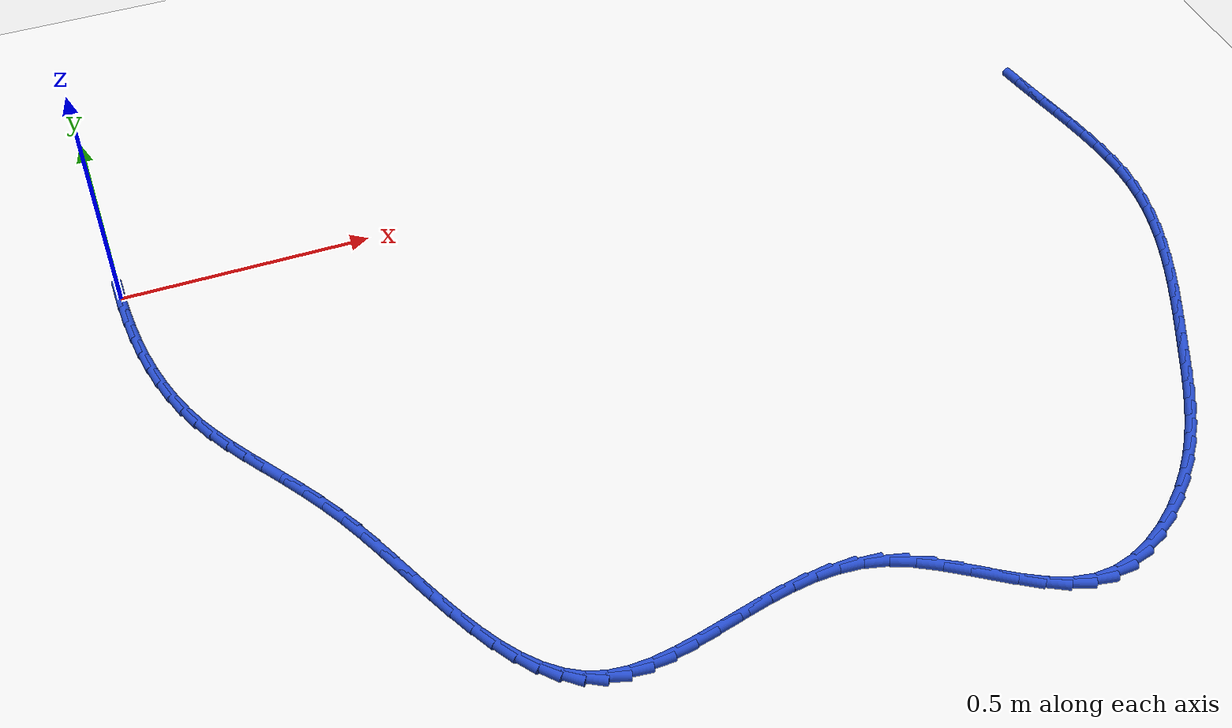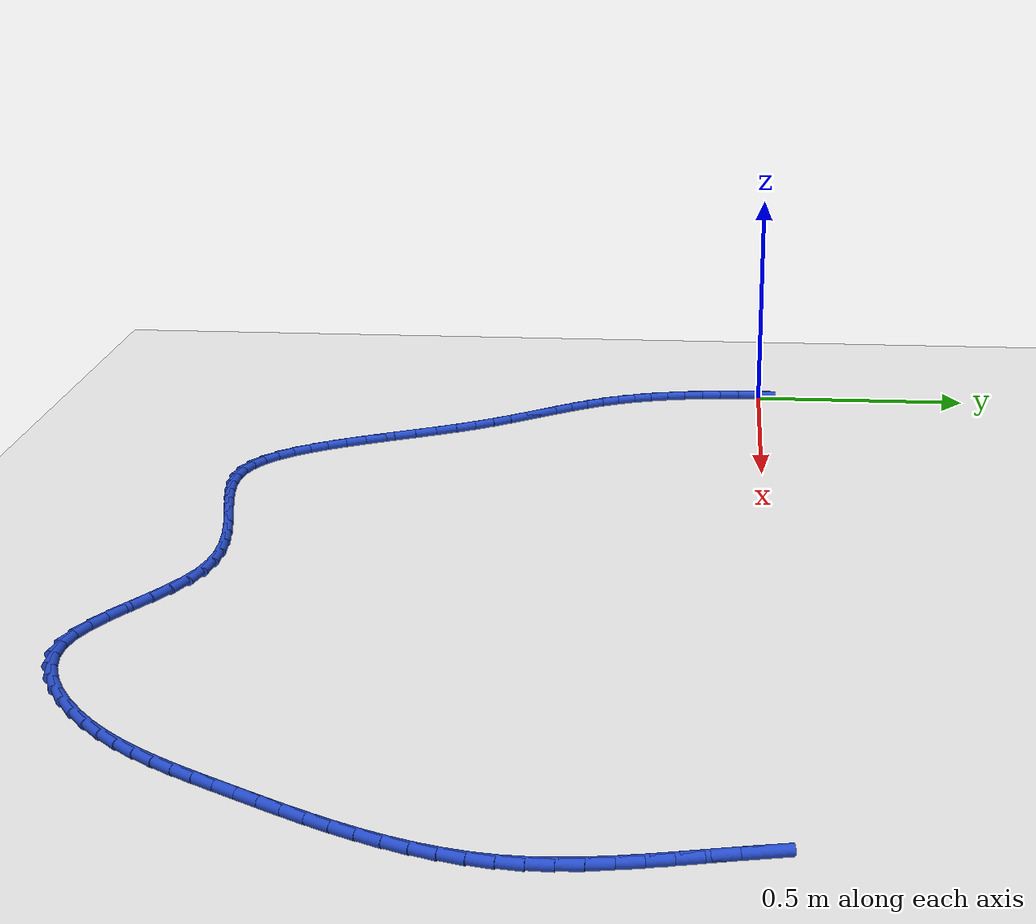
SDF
<sdf version="1.6">
 <world name="default">
  <model name="ground_plane">
   <static>1</static>
   <link name="link">
    <collision name="collision">
     <geometry><plane><normal>0 0 1</normal><size>100 100</size></plane></geometry>
     <surface><friction><ode><mu>100</mu><mu2>50</mu2></ode></friction></surface>
    </collision>
    <visual name="visual">
     <cast_shadows>0</cast_shadows>
     <geometry><plane><normal>0 0 1</normal><size>100 100</size></plane></geometry>
     <material>
      <script><uri>file://media/materials/scripts/gazebo.material</uri><name>Gazebo/WhiteGlow</name></script>
     </material>
    </visual>
   </link>
  </model>
  <model name="line">
   <link name="link_0">
    <pose>1.474514954580286e-17 -1.3877787807814457e-17 0.01 0 1.57 -1.569611502420711</pose>
    <collision name="collision">
     <geometry><cylinder><radius>0.01</radius><length>0.08</length></cylinder></geometry>
    </collision>
    <visual name="visual">
     <material>
      <script><name>Gazebo/Blue</name><uri>file://media/materials/scripts/gazebo.material</uri></script>
     </material>
     <geometry><cylinder><radius>0.01</radius><length>0.08</length></cylinder></geometry>
    </visual>
   </link>
   <link name="link_86">
    <pose>1.9812533898457014 -0.018673270940326357 0.01 0 1.57 -1.3829770902347867</pose>
    <collision name="collision">
     <geometry><cylinder><radius>0.01</radius><length>0.08</length></cylinder></geometry>
    </collision>
    <visual name="visual">
     <material>
      <script><name>Gazebo/Blue</name><uri>file://media/materials/scripts/gazebo.material</uri></script>
     </material>
     <geometry><cylinder><radius>0.01</radius><length>0.08</length></cylinder></geometry>
    </visual>
   </link>
   <link name="link_87">
    <pose>1.989502669423472 -0.062076971905665905 0.01 0 1.57 -1.371111075897321</pose>
    <collision name="collision">
     <geometry><cylinder><radius>0.01</radius><length>0.08</length></cylinder></geometry>
    </collision>
    <visual name="visual">
     <material>
      <script><name>Gazebo/Blue</name><uri>file://media/materials/scripts/gazebo.material</uri></script>
     </material>
     <geometry><cylinder><radius>0.01</radius><length>0.08</length></cylinder></geometry>
    </visual>
   </link>
   <link name="link_88">
    <pose>1.9982379883521075 -0.10523942110119433 0.01 0 1.57 -1.3703169247256088</pose>
    <collision name="collision">
     <geometry><cylinder><radius>0.01</radius><length>0.08</length></cylinder></geometry>
    </collision>
    <visual name="visual">
     <material>
      <script><name>Gazebo/Blue</name><uri>file://media/materials/scripts/gazebo.material</uri></script>
     </material>
     <geometry><cylinder><radius>0.01</radius><length>0.08</length></cylinder></geometry>
    </visual>
   </link>
   <link name="link_89">
    <pose>2.0069653127912748 -0.14818691100793302 0.01 0 1.57 -1.3807528859731506</pose>
    <collision name="collision">
     <geometry><cylinder><radius>0.01</radius><length>0.08</length></cylinder></geometry>
    </collision>
    <visual name="visual">
     <material>
      <script><name>Gazebo/Blue</name><uri>file://media/materials/scripts/gazebo.material</uri></script>
     </material>
     <geometry><cylinder><radius>0.01</radius><length>0.08</length></cylinder></geometry>
    </visual>
   </link>
   <link name="link_90">
    <pose>2.015190608900641 -0.19094573410690097 0.01 0 1.57 -1.4026836878579925</pose>
    <collision name="collision">
     <geometry><cylinder><radius>0.01</radius><length>0.08</length></cylinder></geometry>
    </collision>
    <visual name="visual">
     <material>
      <script><name>Gazebo/Blue</name><uri>file://media/materials/scripts/gazebo.material</uri></script>
     </material>
     <geometry><cylinder><radius>0.01</radius><length>0.08</length></cylinder></geometry>
    </visual>
   </link>
   <link name="link_91">
    <pose>2.0224198428398723 -0.23354218287911951 0.01 0 1.57 -1.4364459619905559</pose>
    <collision name="collision">
     <geometry><cylinder><radius>0.01</radius><length>0.08</length></cylinder></geometry>
    </collision>
    <visual name="visual">
     <material>
      <script><name>Gazebo/Blue</name><uri>file://media/materials/scripts/gazebo.material</uri></script>
     </material>
     <geometry><cylinder><radius>0.01</radius><length>0.08</length></cylinder></geometry>
    </visual>
   </link>
   <link name="link_92">
    <pose>2.028158980768636 -0.27600254980560934 0.01 0 1.57 -1.48236272086238</pose>
    <collision name="collision">
     <geometry><cylinder><radius>0.01</radius><length>0.08</length></cylinder></geometry>
    </collision>
    <visual name="visual">
     <material>
      <script><name>Gazebo/Blue</name><uri>file://media/materials/scripts/gazebo.material</uri></script>
     </material>
     <geometry><cylinder><radius>0.01</radius><length>0.08</length></cylinder></geometry>
    </visual>
   </link>
   <link name="link_93">
    <pose>2.0319139888466 -0.31835312736739096 0.01 0 1.57 -1.5405965549891274</pose>
    <collision name="collision">
     <geometry><cylinder><radius>0.01</radius><length>0.08</length></cylinder></geometry>
    </collision>
    <visual name="visual">
     <material>
      <script><name>Gazebo/Blue</name><uri>file://media/materials/scripts/gazebo.material</uri></script>
     </material>
     <geometry><cylinder><radius>0.01</radius><length>0.08</length></cylinder></geometry>
    </visual>
   </link>
   <link name="link_94">
    <pose>2.03319083323343 -0.3606202080454858 0.01 0 1.57 1.5306530634161801</pose>
    <collision name="collision">
     <geometry><cylinder><radius>0.01</radius><length>0.08</length></cylinder></geometry>
    </collision>
    <visual name="visual">
     <material>
      <script><name>Gazebo/Blue</name><uri>file://media/materials/scripts/gazebo.material</uri></script>
     </material>
     <geometry><cylinder><radius>0.01</radius><length>0.08</length></cylinder></geometry>
    </visual>
   </link>
   <link name="link_95">
    <pose>2.031495480279 -0.40283008430540035 0.01 0 1.57 1.452391381305673</pose>
    <collision name="collision">
     <geometry><cylinder><radius>0.01</radius><length>0.08</length></cylinder></geometry>
    </collision>
    <visual name="visual">
     <material>
      <script><name>Gazebo/Blue</name><uri>file://media/materials/scripts/gazebo.material</uri></script>
     </material>
     <geometry><cylinder><radius>0.01</radius><length>0.08</length></cylinder></geometry>
    </visual>
   </link>
   <link name="link_96">
    <pose>2.0264792215204626 -0.44499719648742975 0.01 0 1.57 1.38014955476972</pose>
    <collision name="collision">
     <geometry><cylinder><radius>0.01</radius><length>0.08</length></cylinder></geometry>
    </collision>
    <visual name="visual">
     <material>
      <script><name>Gazebo/Blue</name><uri>file://media/materials/scripts/gazebo.material</uri></script>
     </material>
     <geometry><cylinder><radius>0.01</radius><length>0.08</length></cylinder></geometry>
    </visual>
   </link>
   <link name="link_97">
    <pose>2.018355681669334 -0.48709012334848456 0.01 0 1.57 1.3171562721857506</pose>
    <collision name="collision">
     <geometry><cylinder><radius>0.01</radius><length>0.08</length></cylinder></geometry>
    </collision>
    <visual name="visual">
     <material>
      <script><name>Gazebo/Blue</name><uri>file://media/materials/scripts/gazebo.material</uri></script>
     </material>
     <geometry><cylinder><radius>0.01</radius><length>0.08</length></cylinder></geometry>
    </visual>
   </link>
   <link name="link_98">
    <pose>2.007474480576374 -0.5290663524406464 0.01 0 1.57 1.2630947775340389</pose>
    <collision name="collision">
     <geometry><cylinder><radius>0.01</radius><length>0.08</length></cylinder></geometry>
    </collision>
    <visual name="visual">
     <material>
      <script><name>Gazebo/Blue</name><uri>file://media/materials/scripts/gazebo.material</uri></script>
     </material>
     <geometry><cylinder><radius>0.01</radius><length>0.08</length></cylinder></geometry>
    </visual>
   </link>
   <link name="link_99">
    <pose>1.994185238092344 -0.5708833713159981 0.01 0 1.57 1.217473531766666</pose>
    <collision name="collision">
     <geometry><cylinder><radius>0.01</radius><length>0.08</length></cylinder></geometry>
    </collision>
    <visual name="visual">
     <material>
      <script><name>Gazebo/Blue</name><uri>file://media/materials/scripts/gazebo.material</uri></script>
     </material>
     <geometry><cylinder><radius>0.01</radius><length>0.08</length></cylinder></geometry>
    </visual>
   </link>
   <link name="link_100">
    <pose>1.9788375740680055 -0.6124986675266201 0.01 0 1.57 1.1797486753746418</pose>
    <collision name="collision">
     <geometry><cylinder><radius>0.01</radius><length>0.08</length></cylinder></geometry>
    </collision>
    <visual name="visual">
     <material>
      <script><name>Gazebo/Blue</name><uri>file://media/materials/scripts/gazebo.material</uri></script>
     </material>
     <geometry><cylinder><radius>0.01</radius><length>0.08</length></cylinder></geometry>
    </visual>
   </link>
   <link name="link_101">
    <pose>1.96178110835412 -0.6538697286245951 0.01 0 1.57 1.14940668065971</pose>
    <collision name="collision">
     <geometry><cylinder><radius>0.01</radius><length>0.08</length></cylinder></geometry>
    </collision>
    <visual name="visual">
     <material>
      <script><name>Gazebo/Blue</name><uri>file://media/materials/scripts/gazebo.material</uri></script>
     </material>
     <geometry><cylinder><radius>0.01</radius><length>0.08</length></cylinder></geometry>
    </visual>
   </link>
   <link name="link_102">
    <pose>1.9433654608014488 -0.6949540421620055 0.01 0 1.57 1.1260163302226252</pose>
    <collision name="collision">
     <geometry><cylinder><radius>0.01</radius><length>0.08</length></cylinder></geometry>
    </collision>
    <visual name="visual">
     <material>
      <script><name>Gazebo/Blue</name><uri>file://media/materials/scripts/gazebo.material</uri></script>
     </material>
     <geometry><cylinder><radius>0.01</radius><length>0.08</length></cylinder></geometry>
    </visual>
   </link>
   <link name="link_103">
    <pose>1.9239402512607533 -0.7357090956909332 0.01 0 1.57 1.1092605054071307</pose>
    <collision name="collision">
     <geometry><cylinder><radius>0.01</radius><length>0.08</length></cylinder></geometry>
    </collision>
    <visual name="visual">
     <material>
      <script><name>Gazebo/Blue</name><uri>file://media/materials/scripts/gazebo.material</uri></script>
     </material>
     <geometry><cylinder><radius>0.01</radius><length>0.08</length></cylinder></geometry>
    </visual>
   </link>
   <link name="link_104">
    <pose>1.9038550995827932 -0.7760923767634607 0.01 0 1.57 1.0989567016691184</pose>
    <collision name="collision">
     <geometry><cylinder><radius>0.01</radius><length>0.08</length></cylinder></geometry>
    </collision>
    <visual name="visual">
     <material>
      <script><name>Gazebo/Blue</name><uri>file://media/materials/scripts/gazebo.material</uri></script>
     </material>
     <geometry><cylinder><radius>0.01</radius><length>0.08</length></cylinder></geometry>
    </visual>
   </link>
   <link name="link_105">
    <pose>1.8834596256183316 -0.8160613729316685 0.01 0 1.57 1.095042881453827</pose>
    <collision name="collision">
     <geometry><cylinder><radius>0.01</radius><length>0.08</length></cylinder></geometry>
    </collision>
    <visual name="visual">
     <material>
      <script><name>Gazebo/Blue</name><uri>file://media/materials/scripts/gazebo.material</uri></script>
     </material>
     <geometry><cylinder><radius>0.01</radius><length>0.08</length></cylinder></geometry>
    </visual>
   </link>
   <link name="link_106">
    <pose>1.8631019770100081 -0.8555735100790164 0.01 0 1.57 1.0924021762531306</pose>
    <collision name="collision">
     <geometry><cylinder><radius>0.01</radius><length>0.08</length></cylinder></geometry>
    </collision>
    <visual name="visual">
     <material>
      <script><name>Gazebo/Blue</name><uri>file://media/materials/scripts/gazebo.material</uri></script>
     </material>
     <geometry><cylinder><radius>0.01</radius><length>0.08</length></cylinder></geometry>
    </visual>
   </link>
   <link name="link_107">
    <pose>1.8428766129772087 -0.89457558745567 0.01 0 1.57 1.0798327241311692</pose>
    <collision name="collision">
     <geometry><cylinder><radius>0.01</radius><length>0.08</length></cylinder></geometry>
    </collision>
    <visual name="visual">
     <material>
      <script><name>Gazebo/Blue</name><uri>file://media/materials/scripts/gazebo.material</uri></script>
     </material>
     <geometry><cylinder><radius>0.01</radius><length>0.08</length></cylinder></geometry>
    </visual>
   </link>
   <link name="link_108">
    <pose>1.8223382880846004 -0.9329917968810799 0.01 0 1.57 1.0557878216519025</pose>
    <collision name="collision">
     <geometry><cylinder><radius>0.01</radius><length>0.08</length></cylinder></geometry>
    </collision>
    <visual name="visual">
     <material>
      <script><name>Gazebo/Blue</name><uri>file://media/materials/scripts/gazebo.material</uri></script>
     </material>
     <geometry><cylinder><radius>0.01</radius><length>0.08</length></cylinder></geometry>
    </visual>
   </link>
   <link name="link_109">
    <pose>1.8009726419413181 -0.9707434350513084 0.01 0 1.57 1.020456507399652</pose>
    <collision name="collision">
     <geometry><cylinder><radius>0.01</radius><length>0.08</length></cylinder></geometry>
    </collision>
    <visual name="visual">
     <material>
      <script><name>Gazebo/Blue</name><uri>file://media/materials/scripts/gazebo.material</uri></script>
     </material>
     <geometry><cylinder><radius>0.01</radius><length>0.08</length></cylinder></geometry>
    </visual>
   </link>
   <link name="link_110">
    <pose>1.778265314156497 -1.0077517986624183 0.01 0 1.57 0.9744397275117765</pose>
    <collision name="collision">
     <geometry><cylinder><radius>0.01</radius><length>0.08</length></cylinder></geometry>
    </collision>
    <visual name="visual">
     <material>
      <script><name>Gazebo/Blue</name><uri>file://media/materials/scripts/gazebo.material</uri></script>
     </material>
     <geometry><cylinder><radius>0.01</radius><length>0.08</length></cylinder></geometry>
    </visual>
   </link>
   <link name="link_111">
    <pose>1.753701944339274 -1.043938184410471 0.01 0 1.57 0.9188339428187988</pose>
    <collision name="collision">
     <geometry><cylinder><radius>0.01</radius><length>0.08</length></cylinder></geometry>
    </collision>
    <visual name="visual">
     <material>
      <script><name>Gazebo/Blue</name><uri>file://media/materials/scripts/gazebo.material</uri></script>
     </material>
     <geometry><cylinder><radius>0.01</radius><length>0.08</length></cylinder></geometry>
    </visual>
   </link>
   <link name="link_112">
    <pose>1.7267681720987842 -1.079223888991529 0.01 0 1.57 0.8552693478247163</pose>
    <collision name="collision">
     <geometry><cylinder><radius>0.01</radius><length>0.08</length></cylinder></geometry>
    </collision>
    <visual name="visual">
     <material>
      <script><name>Gazebo/Blue</name><uri>file://media/materials/scripts/gazebo.material</uri></script>
     </material>
     <geometry><cylinder><radius>0.01</radius><length>0.08</length></cylinder></geometry>
    </visual>
   </link>
   <link name="link_113">
    <pose>1.6969496370441626 -1.1135302091016552 0.01 0 1.57 0.7858690814331872</pose>
    <collision name="collision">
     <geometry><cylinder><radius>0.01</radius><length>0.08</length></cylinder></geometry>
    </collision>
    <visual name="visual">
     <material>
      <script><name>Gazebo/Blue</name><uri>file://media/materials/scripts/gazebo.material</uri></script>
     </material>
     <geometry><cylinder><radius>0.01</radius><length>0.08</length></cylinder></geometry>
    </visual>
   </link>
   <link name="link_114">
    <pose>1.6638016323614995 -1.1467094484821174 0.01 0 1.57 0.7111743222547966</pose>
    <collision name="collision">
     <geometry><cylinder><radius>0.01</radius><length>0.08</length></cylinder></geometry>
    </collision>
    <visual name="visual">
     <material>
      <script><name>Gazebo/Blue</name><uri>file://media/materials/scripts/gazebo.material</uri></script>
     </material>
     <geometry><cylinder><radius>0.01</radius><length>0.08</length></cylinder></geometry>
    </visual>
   </link>
   <link name="link_115">
    <pose>1.6276031955970993 -1.1778970307926642 0.01 0 1.57 0.6267005551634358</pose>
    <collision name="collision">
     <geometry><cylinder><radius>0.01</radius><length>0.08</length></cylinder></geometry>
    </collision>
    <visual name="visual">
     <material>
      <script><name>Gazebo/Blue</name><uri>file://media/materials/scripts/gazebo.material</uri></script>
     </material>
     <geometry><cylinder><radius>0.01</radius><length>0.08</length></cylinder></geometry>
    </visual>
   </link>
   <link name="link_116">
    <pose>1.5890624680826184 -1.205803345698255 0.01 0 1.57 0.5261740592751756</pose>
    <collision name="collision">
     <geometry><cylinder><radius>0.01</radius><length>0.08</length></cylinder></geometry>
    </collision>
    <visual name="visual">
     <material>
      <script><name>Gazebo/Blue</name><uri>file://media/materials/scripts/gazebo.material</uri></script>
     </material>
     <geometry><cylinder><radius>0.01</radius><length>0.08</length></cylinder></geometry>
    </visual>
   </link>
   <link name="link_117">
    <pose>1.5488932205015051 -1.2291332069030654 0.01 0 1.57 0.4018195688726825</pose>
    <collision name="collision">
     <geometry><cylinder><radius>0.01</radius><length>0.08</length></cylinder></geometry>
    </collision>
    <visual name="visual">
     <material>
      <script><name>Gazebo/Blue</name><uri>file://media/materials/scripts/gazebo.material</uri></script>
     </material>
     <geometry><cylinder><radius>0.01</radius><length>0.08</length></cylinder></geometry>
    </visual>
   </link>
   <link name="link_118">
    <pose>1.507809223537208 -1.2465914281112687 0.01 0 1.57 0.24429807771158354</pose>
    <collision name="collision">
     <geometry><cylinder><radius>0.01</radius><length>0.08</length></cylinder></geometry>
    </collision>
    <visual name="visual">
     <material>
      <script><name>Gazebo/Blue</name><uri>file://media/materials/scripts/gazebo.material</uri></script>
     </material>
     <geometry><cylinder><radius>0.01</radius><length>0.08</length></cylinder></geometry>
    </visual>
   </link>
   <link name="link_119">
    <pose>1.4665242478731764 -1.2568828230270401 0.01 0 1.57 0.044838319226731455</pose>
    <collision name="collision">
     <geometry><cylinder><radius>0.01</radius><length>0.08</length></cylinder></geometry>
    </collision>
    <visual name="visual">
     <material>
      <script><name>Gazebo/Blue</name><uri>file://media/materials/scripts/gazebo.material</uri></script>
     </material>
     <geometry><cylinder><radius>0.01</radius><length>0.08</length></cylinder></geometry>
    </visual>
   </link>
   <link name="link_120">
    <pose>1.4257520641928587 -1.2587122053545532 0.01 0 1.57 -0.18429249679173657</pose>
    <collision name="collision">
     <geometry><cylinder><radius>0.01</radius><length>0.08</length></cylinder></geometry>
    </collision>
    <visual name="visual">
     <material>
      <script><name>Gazebo/Blue</name><uri>file://media/materials/scripts/gazebo.material</uri></script>
     </material>
     <geometry><cylinder><radius>0.01</radius><length>0.08</length></cylinder></geometry>
    </visual>
   </link>
   <link name="link_121">
    <pose>1.3860391979605995 -1.2513094230159543 0.01 0 1.57 -0.3718226003157142</pose>
    <collision name="collision">
     <geometry><cylinder><radius>0.01</radius><length>0.08</length></cylinder></geometry>
    </collision>
    <visual name="visual">
     <material>
      <script><name>Gazebo/Blue</name><uri>file://media/materials/scripts/gazebo.material</uri></script>
     </material>
     <geometry><cylinder><radius>0.01</radius><length>0.08</length></cylinder></geometry>
    </visual>
   </link>
   <link name="link_122">
    <pose>1.3472111104761737 -1.2361679662771308 0.01 0 1.57 -0.49691332846639535</pose>
    <collision name="collision">
     <geometry><cylinder><radius>0.01</radius><length>0.08</length></cylinder></geometry>
    </collision>
    <visual name="visual">
     <material>
      <script><name>Gazebo/Blue</name><uri>file://media/materials/scripts/gazebo.material</uri></script>
     </material>
     <geometry><cylinder><radius>0.01</radius><length>0.08</length></cylinder></geometry>
    </visual>
   </link>
   <link name="link_123">
    <pose>1.3088989781881624 -1.2153912453493987 0.01 0 1.57 -0.5671346628533963</pose>
    <collision name="collision">
     <geometry><cylinder><radius>0.01</radius><length>0.08</length></cylinder></geometry>
    </collision>
    <visual name="visual">
     <material>
      <script><name>Gazebo/Blue</name><uri>file://media/materials/scripts/gazebo.material</uri></script>
     </material>
     <geometry><cylinder><radius>0.01</radius><length>0.08</length></cylinder></geometry>
    </visual>
   </link>
   <link name="link_124">
    <pose>1.2707339747320268 -1.1910826792753282 0.01 0 1.57 -0.5906285581596572</pose>
    <collision name="collision">
     <geometry><cylinder><radius>0.01</radius><length>0.08</length></cylinder></geometry>
    </collision>
    <visual name="visual">
     <material>
      <script><name>Gazebo/Blue</name><uri>file://media/materials/scripts/gazebo.material</uri></script>
     </material>
     <geometry><cylinder><radius>0.01</radius><length>0.08</length></cylinder></geometry>
    </visual>
   </link>
   <link name="link_125">
    <pose>1.2323472737432268 -1.165345687097488 0.01 0 1.57 -0.5714320878071687</pose>
    <collision name="collision">
     <geometry><cylinder><radius>0.01</radius><length>0.08</length></cylinder></geometry>
    </collision>
    <visual name="visual">
     <material>
      <script><name>Gazebo/Blue</name><uri>file://media/materials/scripts/gazebo.material</uri></script>
     </material>
     <geometry><cylinder><radius>0.01</radius><length>0.08</length></cylinder></geometry>
    </visual>
   </link>
   <link name="link_126">
    <pose>1.1933700488572228 -1.1402836878584486 0.01 0 1.57 -0.5089449818770928</pose>
    <collision name="collision">
     <geometry><cylinder><radius>0.01</radius><length>0.08</length></cylinder></geometry>
    </collision>
    <visual name="visual">
     <material>
      <script><name>Gazebo/Blue</name><uri>file://media/materials/scripts/gazebo.material</uri></script>
     </material>
     <geometry><cylinder><radius>0.01</radius><length>0.08</length></cylinder></geometry>
    </visual>
   </link>
   <link name="link_127">
    <pose>1.153433473709477 -1.1180001006007798 0.01 0 1.57 -0.3990806448086749</pose>
    <collision name="collision">
     <geometry><cylinder><radius>0.01</radius><length>0.08</length></cylinder></geometry>
    </collision>
    <visual name="visual">
     <material>
      <script><name>Gazebo/Blue</name><uri>file://media/materials/scripts/gazebo.material</uri></script>
     </material>
     <geometry><cylinder><radius>0.01</radius><length>0.08</length></cylinder></geometry>
    </visual>
   </link>
   <link name="link_128">
    <pose>1.1121687219354486 -1.100598344367051 0.01 0 1.57 -0.24147034079971738</pose>
    <collision name="collision">
     <geometry><cylinder><radius>0.01</radius><length>0.08</length></cylinder></geometry>
    </collision>
    <visual name="visual">
     <material>
      <script><name>Gazebo/Blue</name><uri>file://media/materials/scripts/gazebo.material</uri></script>
     </material>
     <geometry><cylinder><radius>0.01</radius><length>0.08</length></cylinder></geometry>
    </visual>
   </link>
   <link name="link_129">
    <pose>1.0692430069509504 -1.090026785630014 0.01 0 1.57 -0.08299883632488969</pose>
    <collision name="collision">
     <geometry><cylinder><radius>0.01</radius><length>0.08</length></cylinder></geometry>
    </collision>
    <visual name="visual">
     <material>
      <script><name>Gazebo/Blue</name><uri>file://media/materials/scripts/gazebo.material</uri></script>
     </material>
     <geometry><cylinder><radius>0.01</radius><length>0.08</length></cylinder></geometry>
    </visual>
   </link>
   <link name="link_130">
    <pose>1.024766792583656 -1.0863268115533833 0.01 0 1.57 0.042308220571196924</pose>
    <collision name="collision">
     <geometry><cylinder><radius>0.01</radius><length>0.08</length></cylinder></geometry>
    </collision>
    <visual name="visual">
     <material>
      <script><name>Gazebo/Blue</name><uri>file://media/materials/scripts/gazebo.material</uri></script>
     </material>
     <geometry><cylinder><radius>0.01</radius><length>0.08</length></cylinder></geometry>
    </visual>
   </link>
   <link name="link_131">
    <pose>0.9791484826500381 -1.0882579934722278 0.01 0 1.57 0.13506451541870484</pose>
    <collision name="collision">
     <geometry><cylinder><radius>0.01</radius><length>0.08</length></cylinder></geometry>
    </collision>
    <visual name="visual">
     <material>
      <script><name>Gazebo/Blue</name><uri>file://media/materials/scripts/gazebo.material</uri></script>
     </material>
     <geometry><cylinder><radius>0.01</radius><length>0.08</length></cylinder></geometry>
    </visual>
   </link>
   <link name="link_132">
    <pose>0.9328020133094579 -1.0945561011342355 0.01 0 1.57 0.19881013303651937</pose>
    <collision name="collision">
     <geometry><cylinder><radius>0.01</radius><length>0.08</length></cylinder></geometry>
    </collision>
    <visual name="visual">
     <material>
      <script><name>Gazebo/Blue</name><uri>file://media/materials/scripts/gazebo.material</uri></script>
     </material>
     <geometry><cylinder><radius>0.01</radius><length>0.08</length></cylinder></geometry>
    </visual>
   </link>
   <link name="link_133">
    <pose>0.8861413207212718 -1.1039569042870923 0.01 0 1.57 0.2368571067052578</pose>
    <collision name="collision">
     <geometry><cylinder><radius>0.01</radius><length>0.08</length></cylinder></geometry>
    </collision>
    <visual name="visual">
     <material>
      <script><name>Gazebo/Blue</name><uri>file://media/materials/scripts/gazebo.material</uri></script>
     </material>
     <geometry><cylinder><radius>0.01</radius><length>0.08</length></cylinder></geometry>
    </visual>
   </link>
   <link name="link_134">
    <pose>0.8395803410448391 -1.1151961726784854 0.01 0 1.57 0.2511350420227273</pose>
    <collision name="collision">
     <geometry><cylinder><radius>0.01</radius><length>0.08</length></cylinder></geometry>
    </collision>
    <visual name="visual">
     <material>
      <script><name>Gazebo/Blue</name><uri>file://media/materials/scripts/gazebo.material</uri></script>
     </material>
     <geometry><cylinder><radius>0.01</radius><length>0.08</length></cylinder></geometry>
    </visual>
   </link>
   <link name="link_135">
    <pose>0.7935330104395176 -1.1270096760561024 0.01 0 1.57 0.24171299207173114</pose>
    <collision name="collision">
     <geometry><cylinder><radius>0.01</radius><length>0.08</length></cylinder></geometry>
    </collision>
    <visual name="visual">
     <material>
      <script><name>Gazebo/Blue</name><uri>file://media/materials/scripts/gazebo.material</uri></script>
     </material>
     <geometry><cylinder><radius>0.01</radius><length>0.08</length></cylinder></geometry>
    </visual>
   </link>
   <link name="link_136">
    <pose>0.7484132650646654 -1.1381331841676297 0.01 0 1.57 0.20646391307965176</pose>
    <collision name="collision">
     <geometry><cylinder><radius>0.01</radius><length>0.08</length></cylinder></geometry>
    </collision>
    <visual name="visual">
     <material>
      <script><name>Gazebo/Blue</name><uri>file://media/materials/scripts/gazebo.material</uri></script>
     </material>
     <geometry><cylinder><radius>0.01</radius><length>0.08</length></cylinder></geometry>
    </visual>
   </link>
   <link name="link_137">
    <pose>0.7046350410796421 -1.1473024667607539 0.01 0 1.57 0.14067424209728863</pose>
    <collision name="collision">
     <geometry><cylinder><radius>0.01</radius><length>0.08</length></cylinder></geometry>
    </collision>
    <visual name="visual">
     <material>
      <script><name>Gazebo/Blue</name><uri>file://media/materials/scripts/gazebo.material</uri></script>
     </material>
     <geometry><cylinder><radius>0.01</radius><length>0.08</length></cylinder></geometry>
    </visual>
   </link>
   <link name="link_138">
    <pose>0.6626122746438058 -1.1532532935831628 0.01 0 1.57 0.036821907691252403</pose>
    <collision name="collision">
     <geometry><cylinder><radius>0.01</radius><length>0.08</length></cylinder></geometry>
    </collision>
    <visual name="visual">
     <material>
      <script><name>Gazebo/Blue</name><uri>file://media/materials/scripts/gazebo.material</uri></script>
     </material>
     <geometry><cylinder><radius>0.01</radius><length>0.08</length></cylinder></geometry>
    </visual>
   </link>
   <link name="link_139">
    <pose>0.6227589019165144 -1.154721434382543 0.01 0 1.57 -0.11430425538067733</pose>
    <collision name="collision">
     <geometry><cylinder><radius>0.01</radius><length>0.08</length></cylinder></geometry>
    </collision>
    <visual name="visual">
     <material>
      <script><name>Gazebo/Blue</name><uri>file://media/materials/scripts/gazebo.material</uri></script>
     </material>
     <geometry><cylinder><radius>0.01</radius><length>0.08</length></cylinder></geometry>
    </visual>
   </link>
   <link name="link_140">
    <pose>0.5854888590571266 -1.150442658906581 0.01 0 1.57 -0.3152104968645519</pose>
    <collision name="collision">
     <geometry><cylinder><radius>0.01</radius><length>0.08</length></cylinder></geometry>
    </collision>
    <visual name="visual">
     <material>
      <script><name>Gazebo/Blue</name><uri>file://media/materials/scripts/gazebo.material</uri></script>
     </material>
     <geometry><cylinder><radius>0.01</radius><length>0.08</length></cylinder></geometry>
    </visual>
   </link>
   <link name="link_141">
    <pose>0.5511780165753297 -1.1392545002440027 0.01 0 1.57 -0.5225237773317238</pose>
    <collision name="collision">
     <geometry><cylinder><radius>0.01</radius><length>0.08</length></cylinder></geometry>
    </collision>
    <visual name="visual">
     <material>
      <script><name>Gazebo/Blue</name><uri>file://media/materials/scripts/gazebo.material</uri></script>
     </material>
     <geometry><cylinder><radius>0.01</radius><length>0.08</length></cylinder></geometry>
    </visual>
   </link>
   <link name="link_142">
    <pose>0.5197650684786355 -1.1211632234471094 0.01 0 1.57 -0.6986979543789874</pose>
    <collision name="collision">
     <geometry><cylinder><radius>0.01</radius><length>0.08</length></cylinder></geometry>
    </collision>
    <visual name="visual">
     <material>
      <script><name>Gazebo/Blue</name><uri>file://media/materials/scripts/gazebo.material</uri></script>
     </material>
     <geometry><cylinder><radius>0.01</radius><length>0.08</length></cylinder></geometry>
    </visual>
   </link>
   <link name="link_143">
    <pose>0.49090917297113484 -1.0969223945480113 0.01 0 1.57 -0.8383162820028172</pose>
    <collision name="collision">
     <geometry><cylinder><radius>0.01</radius><length>0.08</length></cylinder></geometry>
    </collision>
    <visual name="visual">
     <material>
      <script><name>Gazebo/Blue</name><uri>file://media/materials/scripts/gazebo.material</uri></script>
     </material>
     <geometry><cylinder><radius>0.01</radius><length>0.08</length></cylinder></geometry>
    </visual>
   </link>
   <link name="link_144">
    <pose>0.4642649409639561 -1.0672977361485438 0.01 0 1.57 -0.9444084599551408</pose>
    <collision name="collision">
     <geometry><cylinder><radius>0.01</radius><length>0.08</length></cylinder></geometry>
    </collision>
    <visual name="visual">
     <material>
      <script><name>Gazebo/Blue</name><uri>file://media/materials/scripts/gazebo.material</uri></script>
     </material>
     <geometry><cylinder><radius>0.01</radius><length>0.08</length></cylinder></geometry>
    </visual>
   </link>
   <link name="link_145">
    <pose>0.43948698336822783 -1.0330549708505417 0.01 0 1.57 -1.022692305719655</pose>
    <collision name="collision">
     <geometry><cylinder><radius>0.01</radius><length>0.08</length></cylinder></geometry>
    </collision>
    <visual name="visual">
     <material>
      <script><name>Gazebo/Blue</name><uri>file://media/materials/scripts/gazebo.material</uri></script>
     </material>
     <geometry><cylinder><radius>0.01</radius><length>0.08</length></cylinder></geometry>
    </visual>
   </link>
   <link name="link_146">
    <pose>0.4162299110950787 -0.9949598212558401 0.01 0 1.57 -1.078611920497188</pose>
    <collision name="collision">
     <geometry><cylinder><radius>0.01</radius><length>0.08</length></cylinder></geometry>
    </collision>
    <visual name="visual">
     <material>
      <script><name>Gazebo/Blue</name><uri>file://media/materials/scripts/gazebo.material</uri></script>
     </material>
     <geometry><cylinder><radius>0.01</radius><length>0.08</length></cylinder></geometry>
    </visual>
   </link>
   <link name="link_147">
    <pose>0.39414833505563723 -0.9537780099662743 0.01 0 1.57 -1.1163840046446143</pose>
    <collision name="collision">
     <geometry><cylinder><radius>0.01</radius><length>0.08</length></cylinder></geometry>
    </collision>
    <visual name="visual">
     <material>
      <script><name>Gazebo/Blue</name><uri>file://media/materials/scripts/gazebo.material</uri></script>
     </material>
     <geometry><cylinder><radius>0.01</radius><length>0.08</length></cylinder></geometry>
    </visual>
   </link>
   <link name="link_148">
    <pose>0.3728968661610328 -0.9102752595836807 0.01 0 1.57 -1.138923552455231</pose>
    <collision name="collision">
     <geometry><cylinder><radius>0.01</radius><length>0.08</length></cylinder></geometry>
    </collision>
    <visual name="visual">
     <material>
      <script><name>Gazebo/Blue</name><uri>file://media/materials/scripts/gazebo.material</uri></script>
     </material>
     <geometry><cylinder><radius>0.01</radius><length>0.08</length></cylinder></geometry>
    </visual>
   </link>
   <link name="link_149">
    <pose>0.35213011532239386 -0.8652172927098941 0.01 0 1.57 -1.1480137862251198</pose>
    <collision name="collision">
     <geometry><cylinder><radius>0.01</radius><length>0.08</length></cylinder></geometry>
    </collision>
    <visual name="visual">
     <material>
      <script><name>Gazebo/Blue</name><uri>file://media/materials/scripts/gazebo.material</uri></script>
     </material>
     <geometry><cylinder><radius>0.01</radius><length>0.08</length></cylinder></geometry>
    </visual>
   </link>
   <link name="link_150">
    <pose>0.3315026934508491 -0.8193698319467502 0.01 0 1.57 -1.1444774300110125</pose>
    <collision name="collision">
     <geometry><cylinder><radius>0.01</radius><length>0.08</length></cylinder></geometry>
    </collision>
    <visual name="visual">
     <material>
      <script><name>Gazebo/Blue</name><uri>file://media/materials/scripts/gazebo.material</uri></script>
     </material>
     <geometry><cylinder><radius>0.01</radius><length>0.08</length></cylinder></geometry>
    </visual>
   </link>
   <link name="link_151">
    <pose>0.31066921145752713 -0.7734985998960836 0.01 0 1.57 -1.128279077544727</pose>
    <collision name="collision">
     <geometry><cylinder><radius>0.01</radius><length>0.08</length></cylinder></geometry>
    </collision>
    <visual name="visual">
     <material>
      <script><name>Gazebo/Blue</name><uri>file://media/materials/scripts/gazebo.material</uri></script>
     </material>
     <geometry><cylinder><radius>0.01</radius><length>0.08</length></cylinder></geometry>
    </visual>
   </link>
   <link name="link_152">
    <pose>0.28928428025355685 -0.7283693191597305 0.01 0 1.57 -1.0985487715704498</pose>
    <collision name="collision">
     <geometry><cylinder><radius>0.01</radius><length>0.08</length></cylinder></geometry>
    </collision>
    <visual name="visual">
     <material>
      <script><name>Gazebo/Blue</name><uri>file://media/materials/scripts/gazebo.material</uri></script>
     </material>
     <geometry><cylinder><radius>0.01</radius><length>0.08</length></cylinder></geometry>
    </visual>
   </link>
   <link name="link_153">
    <pose>0.26700251075006654 -0.6847477123395248 0.01 0 1.57 -1.05543117837572</pose>
    <collision name="collision">
     <geometry><cylinder><radius>0.01</radius><length>0.08</length></cylinder></geometry>
    </collision>
    <visual name="visual">
     <material>
      <script><name>Gazebo/Blue</name><uri>file://media/materials/scripts/gazebo.material</uri></script>
     </material>
     <geometry><cylinder><radius>0.01</radius><length>0.08</length></cylinder></geometry>
    </visual>
   </link>
   <link name="link_154">
    <pose>0.24353419954013789 -0.6433152875915255 0.01 0 1.57 -1.0146787579578334</pose>
    <collision name="collision">
     <geometry><cylinder><radius>0.01</radius><length>0.08</length></cylinder></geometry>
    </collision>
    <visual name="visual">
     <material>
      <script><name>Gazebo/Blue</name><uri>file://media/materials/scripts/gazebo.material</uri></script>
     </material>
     <geometry><cylinder><radius>0.01</radius><length>0.08</length></cylinder></geometry>
    </visual>
   </link>
   <link name="link_155">
    <pose>0.21909291960796512 -0.6039924392474612 0.01 0 1.57 -0.9864371973567481</pose>
    <collision name="collision">
     <geometry><cylinder><radius>0.01</radius><length>0.08</length></cylinder></geometry>
    </collision>
    <visual name="visual">
     <material>
      <script><name>Gazebo/Blue</name><uri>file://media/materials/scripts/gazebo.material</uri></script>
     </material>
     <geometry><cylinder><radius>0.01</radius><length>0.08</length></cylinder></geometry>
    </visual>
   </link>
   <link name="link_156">
    <pose>0.19415948126651159 -0.5662954138807043 0.01 0 1.57 -0.9720796280587382</pose>
    <collision name="collision">
     <geometry><cylinder><radius>0.01</radius><length>0.08</length></cylinder></geometry>
    </collision>
    <visual name="visual">
     <material>
      <script><name>Gazebo/Blue</name><uri>file://media/materials/scripts/gazebo.material</uri></script>
     </material>
     <geometry><cylinder><radius>0.01</radius><length>0.08</length></cylinder></geometry>
    </visual>
   </link>
   <link name="link_157">
    <pose>0.16921715703199144 -0.5297367344309234 0.01 0 1.57 -0.9726562007978201</pose>
    <collision name="collision">
     <geometry><cylinder><radius>0.01</radius><length>0.08</length></cylinder></geometry>
    </collision>
    <visual name="visual">
     <material>
      <script><name>Gazebo/Blue</name><uri>file://media/materials/scripts/gazebo.material</uri></script>
     </material>
     <geometry><cylinder><radius>0.01</radius><length>0.08</length></cylinder></geometry>
    </visual>
   </link>
   <link name="link_158">
    <pose>0.14474921942061847 -0.49382892383778665 0.01 0 1.57 -0.9890042009019722</pose>
    <collision name="collision">
     <geometry><cylinder><radius>0.01</radius><length>0.08</length></cylinder></geometry>
    </collision>
    <visual name="visual">
     <material>
      <script><name>Gazebo/Blue</name><uri>file://media/materials/scripts/gazebo.material</uri></script>
     </material>
     <geometry><cylinder><radius>0.01</radius><length>0.08</length></cylinder></geometry>
    </visual>
   </link>
   <link name="link_159">
    <pose>0.1212389409486077 -0.45808450504096343 0.01 0 1.57 -1.0216923276444696</pose>
    <collision name="collision">
     <geometry><cylinder><radius>0.01</radius><length>0.08</length></cylinder></geometry>
    </collision>
    <visual name="visual">
     <material>
      <script><name>Gazebo/Blue</name><uri>file://media/materials/scripts/gazebo.material</uri></script>
     </material>
     <geometry><cylinder><radius>0.01</radius><length>0.08</length></cylinder></geometry>
    </visual>
   </link>
   <link name="link_160">
    <pose>0.09916959413217291 -0.42201600098012193 0.01 0 1.57 -1.0708491497172554</pose>
    <collision name="collision">
     <geometry><cylinder><radius>0.01</radius><length>0.08</length></cylinder></geometry>
    </collision>
    <visual name="visual">
     <material>
      <script><name>Gazebo/Blue</name><uri>file://media/materials/scripts/gazebo.material</uri></script>
     </material>
     <geometry><cylinder><radius>0.01</radius><length>0.08</length></cylinder></geometry>
    </visual>
   </link>
   <link name="link_161">
    <pose>0.07902445148752826 -0.38513593459493056 0.01 0 1.57 -1.1357015872434812</pose>
    <collision name="collision">
     <geometry><cylinder><radius>0.01</radius><length>0.08</length></cylinder></geometry>
    </collision>
    <visual name="visual">
     <material>
      <script><name>Gazebo/Blue</name><uri>file://media/materials/scripts/gazebo.material</uri></script>
     </material>
     <geometry><cylinder><radius>0.01</radius><length>0.08</length></cylinder></geometry>
    </visual>
   </link>
   <link name="link_162">
    <pose>0.06128127937674357 -0.34696230844554987 0.01 0 1.57 -1.206790496133158</pose>
    <collision name="collision">
     <geometry><cylinder><radius>0.01</radius><length>0.08</length></cylinder></geometry>
    </collision>
    <visual name="visual">
     <material>
      <script><name>Gazebo/Blue</name><uri>file://media/materials/scripts/gazebo.material</uri></script>
     </material>
     <geometry><cylinder><radius>0.01</radius><length>0.08</length></cylinder></geometry>
    </visual>
   </link>
   <link name="link_163">
    <pose>0.04615932881901933 -0.30727039467325884 0.01 0 1.57 -1.2721231865896758</pose>
    <collision name="collision">
     <geometry><cylinder><radius>0.01</radius><length>0.08</length></cylinder></geometry>
    </collision>
    <visual name="visual">
     <material>
      <script><name>Gazebo/Blue</name><uri>file://media/materials/scripts/gazebo.material</uri></script>
     </material>
     <geometry><cylinder><radius>0.01</radius><length>0.08</length></cylinder></geometry>
    </visual>
   </link>
   <link name="link_164">
    <pose>0.03351377138945465 -0.2661977903979595 0.01 0 1.57 -1.3309590871336785</pose>
    <collision name="collision">
     <geometry><cylinder><radius>0.01</radius><length>0.08</length></cylinder></geometry>
    </collision>
    <visual name="visual">
     <material>
      <script><name>Gazebo/Blue</name><uri>file://media/materials/scripts/gazebo.material</uri></script>
     </material>
     <geometry><cylinder><radius>0.01</radius><length>0.08</length></cylinder></geometry>
    </visual>
   </link>
   <link name="link_165">
    <pose>0.023172380614774037 -0.22390935875924095 0.01 0 1.57 -1.383591954201802</pose>
    <collision name="collision">
     <geometry><cylinder><radius>0.01</radius><length>0.08</length></cylinder></geometry>
    </collision>
    <visual name="visual">
     <material>
      <script><name>Gazebo/Blue</name><uri>file://media/materials/scripts/gazebo.material</uri></script>
     </material>
     <geometry><cylinder><radius>0.01</radius><length>0.08</length></cylinder></geometry>
    </visual>
   </link>
   <link name="link_166">
    <pose>0.014962930021702297 -0.18056996289669286 0.01 0 1.57 -1.4304106583390133</pose>
    <collision name="collision">
     <geometry><cylinder><radius>0.01</radius><length>0.08</length></cylinder></geometry>
    </collision>
    <visual name="visual">
     <material>
      <script><name>Gazebo/Blue</name><uri>file://media/materials/scripts/gazebo.material</uri></script>
     </material>
     <geometry><cylinder><radius>0.01</radius><length>0.08</length></cylinder></geometry>
    </visual>
   </link>
   <link name="link_167">
    <pose>0.008713193136964227 -0.13634446594990518 0.01 0 1.57 -1.4718419664330076</pose>
    <collision name="collision">
     <geometry><cylinder><radius>0.01</radius><length>0.08</length></cylinder></geometry>
    </collision>
    <visual name="visual">
     <material>
      <script><name>Gazebo/Blue</name><uri>file://media/materials/scripts/gazebo.material</uri></script>
     </material>
     <geometry><cylinder><radius>0.01</radius><length>0.08</length></cylinder></geometry>
    </visual>
   </link>
   <link name="link_168">
    <pose>0.004250943487284559 -0.09139773105846657 0.01 0 1.57 -1.5083108692045033</pose>
    <collision name="collision">
     <geometry><cylinder><radius>0.01</radius><length>0.08</length></cylinder></geometry>
    </collision>
    <visual name="visual">
     <material>
      <script><name>Gazebo/Blue</name><uri>file://media/materials/scripts/gazebo.material</uri></script>
     </material>
     <geometry><cylinder><radius>0.01</radius><length>0.08</length></cylinder></geometry>
    </visual>
   </link>
   <link name="link_169">
    <pose>0.001403954599388258 -0.045894621361968625 0.01 0 1.57 -1.5402150328713637</pose>
    <collision name="collision">
     <geometry><cylinder><radius>0.01</radius><length>0.08</length></cylinder></geometry>
    </collision>
    <visual name="visual">
     <material>
      <script><name>Gazebo/Blue</name><uri>file://media/materials/scripts/gazebo.material</uri></script>
     </material>
     <geometry><cylinder><radius>0.01</radius><length>0.08</length></cylinder></geometry>
    </visual>
   </link>
   <link name="link_170">
    <pose>1.9081958235744878e-17 -1.6653345369377348e-16 0.01 0 1.57 -1.5679094502064015</pose>
    <collision name="collision">
     <geometry><cylinder><radius>0.01</radius><length>0.08</length></cylinder></geometry>
    </collision>
    <visual name="visual">
     <material>
      <script><name>Gazebo/Blue</name><uri>file://media/materials/scripts/gazebo.material</uri></script>
     </material>
     <geometry><cylinder><radius>0.01</radius><length>0.08</length></cylinder></geometry>
    </visual>
   </link>
  </model>
 </world>
</sdf>
